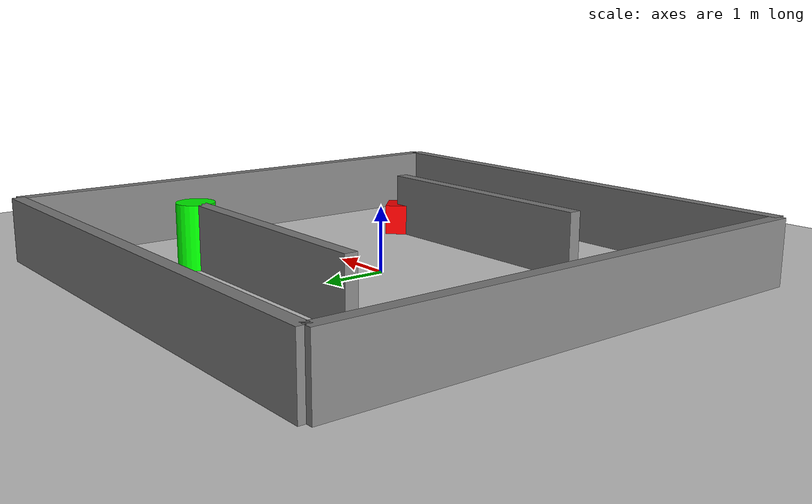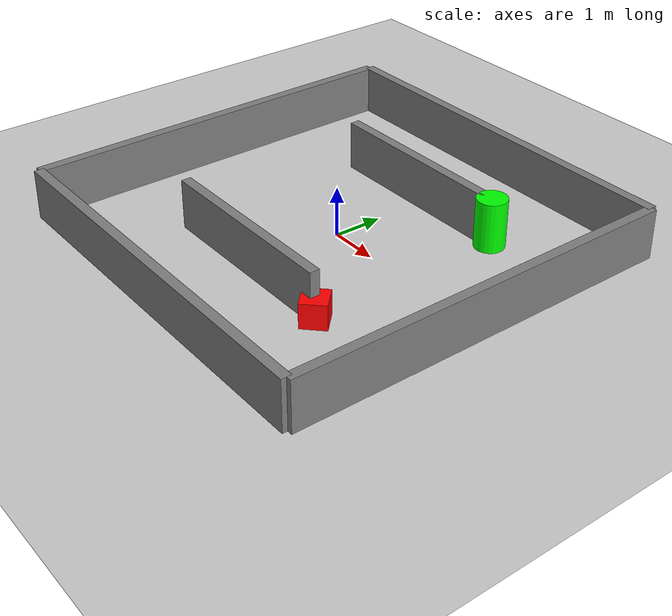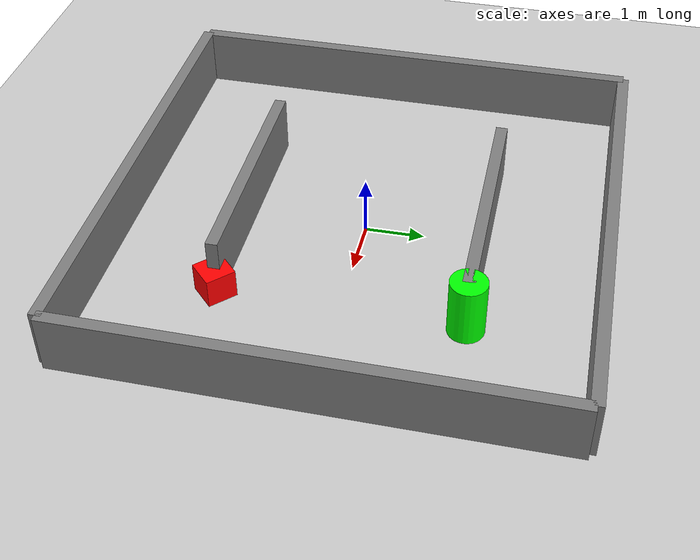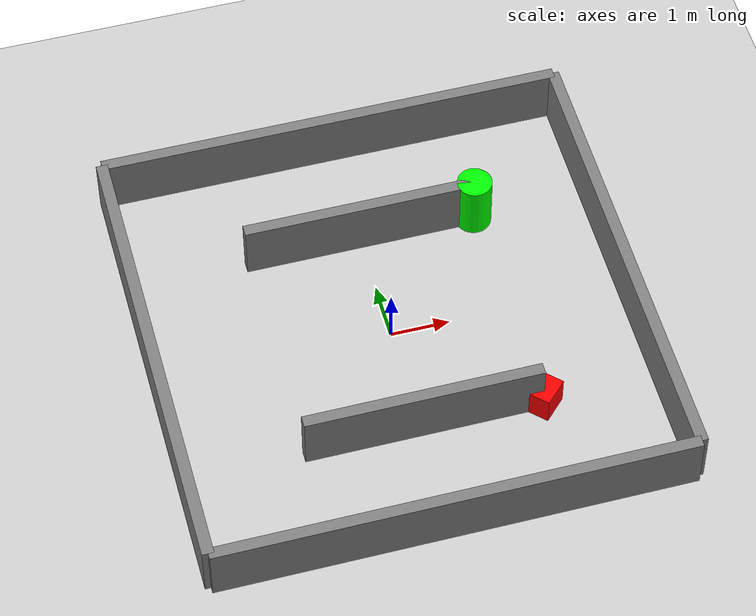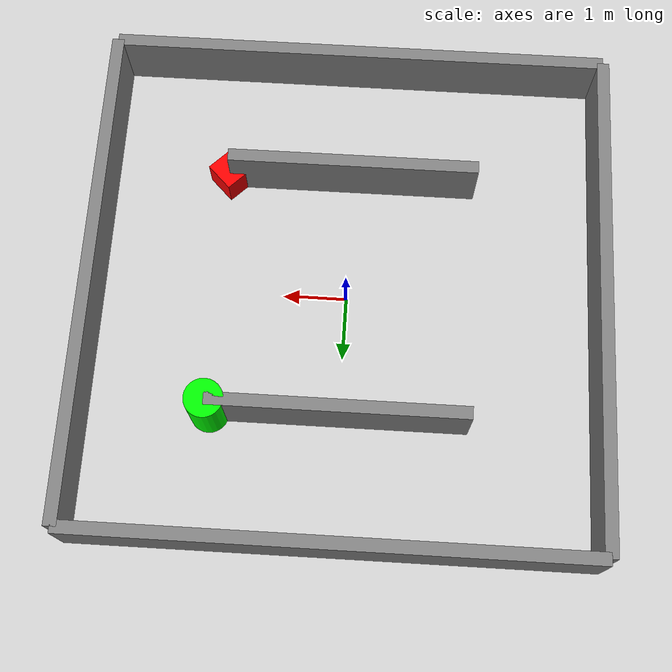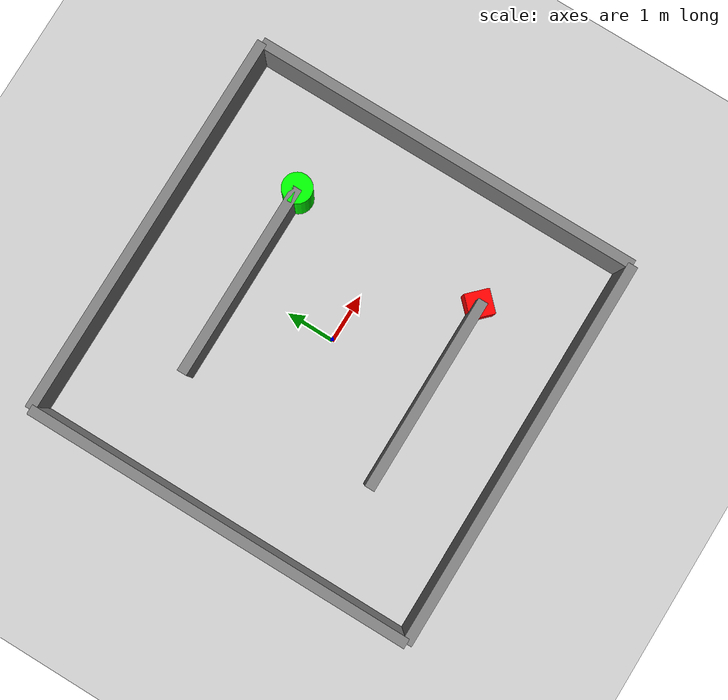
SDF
<sdf version="1.9">
 <world name="obstacle_world">
  <physics name="1ms" type="ignored">
   <max_step_size>0.001</max_step_size>
   <real_time_factor>1.0</real_time_factor>
  </physics>
  <plugin filename="gz-sim-physics-system" name="gz::sim::systems::Physics"/>
  <plugin filename="gz-sim-user-commands-system" name="gz::sim::systems::UserCommands"/>
  <plugin filename="gz-sim-scene-broadcaster-system" name="gz::sim::systems::SceneBroadcaster"/>
  <plugin filename="gz-sim-sensors-system" name="gz::sim::systems::Sensors">
   <render_engine>ogre2</render_engine>
  </plugin>
  <light type="directional" name="sun">
   <pose>0 0 10 0 0 0</pose>
   <diffuse>0.8 0.8 0.8 1</diffuse>
   <specular>0.2 0.2 0.2 1</specular>
   <attenuation>
    <range>1000</range>
    <constant>0.9</constant>
    <linear>0.01</linear>
    <quadratic>0.001</quadratic>
   </attenuation>
   <direction>-0.5 0.1 -0.9</direction>
  </light>
  <model name="ground_plane">
   <static>true</static>
   <link name="link">
    <collision name="collision">
     <geometry><plane><normal>0 0 1</normal><size>100 100</size></plane></geometry>
    </collision>
    <visual name="visual">
     <geometry><plane><normal>0 0 1</normal><size>100 100</size></plane></geometry>
     <material>
      <ambient>0.8 0.8 0.8 1</ambient>
      <diffuse>0.8 0.8 0.8 1</diffuse>
      <specular>0.8 0.8 0.8 1</specular>
     </material>
    </visual>
   </link>
  </model>
  <model name="maze_wall_1">
   <static>true</static>
   <pose>0 4 0.5 0 0 0</pose>
   <link name="link">
    <collision name="collision"><geometry><box><size>8 0.2 1.0</size></box></geometry></collision>
    <visual name="visual">
     <geometry><box><size>8 0.2 1.0</size></box></geometry>
     <material><ambient>0.5 0.5 0.5 1</ambient><diffuse>0.5 0.5 0.5 1</diffuse></material>
    </visual>
   </link>
  </model>
  <model name="maze_wall_2">
   <static>true</static>
   <pose>0 -4 0.5 0 0 0</pose>
   <link name="link">
    <collision name="collision"><geometry><box><size>8 0.2 1.0</size></box></geometry></collision>
    <visual name="visual">
     <geometry><box><size>8 0.2 1.0</size></box></geometry>
     <material><ambient>0.5 0.5 0.5 1</ambient><diffuse>0.5 0.5 0.5 1</diffuse></material>
    </visual>
   </link>
  </model>
  <model name="maze_wall_3">
   <static>true</static>
   <pose>4 0 0.5 0 0 0</pose>
   <link name="link">
    <collision name="collision"><geometry><box><size>0.2 8 1.0</size></box></geometry></collision>
    <visual name="visual">
     <geometry><box><size>0.2 8 1.0</size></box></geometry>
     <material><ambient>0.5 0.5 0.5 1</ambient><diffuse>0.5 0.5 0.5 1</diffuse></material>
    </visual>
   </link>
  </model>
  <model name="maze_wall_4">
   <static>true</static>
   <pose>-4 0 0.5 0 0 0</pose>
   <link name="link">
    <collision name="collision"><geometry><box><size>0.2 8 1.0</size></box></geometry></collision>
    <visual name="visual">
     <geometry><box><size>0.2 8 1.0</size></box></geometry>
     <material><ambient>0.5 0.5 0.5 1</ambient><diffuse>0.5 0.5 0.5 1</diffuse></material>
    </visual>
   </link>
  </model>
  <model name="maze_wall_5">
   <static>true</static>
   <pose>0 2 0.5 0 0 0</pose>
   <link name="link">
    <collision name="collision"><geometry><box><size>4 0.2 1.0</size></box></geometry></collision>
    <visual name="visual">
     <geometry><box><size>4 0.2 1.0</size></box></geometry>
     <material><ambient>0.5 0.5 0.5 1</ambient><diffuse>0.5 0.5 0.5 1</diffuse></material>
    </visual>
   </link>
  </model>
  <model name="maze_wall_6">
   <static>true</static>
   <pose>0 -2 0.5 0 0 0</pose>
   <link name="link">
    <collision name="collision"><geometry><box><size>4 0.2 1.0</size></box></geometry></collision>
    <visual name="visual">
     <geometry><box><size>4 0.2 1.0</size></box></geometry>
     <material><ambient>0.5 0.5 0.5 1</ambient><diffuse>0.5 0.5 0.5 1</diffuse></material>
    </visual>
   </link>
  </model>
  <model name="pillar_1">
   <static>true</static>
   <pose>2 2 0.5 0 0 0</pose>
   <link name="link">
    <collision name="collision">
     <geometry><cylinder><radius>0.3</radius><length>1</length></cylinder></geometry>
    </collision>
    <visual name="visual">
     <geometry><cylinder><radius>0.3</radius><length>1</length></cylinder></geometry>
     <material><ambient>0 1 0 1</ambient><diffuse>0 1 0 1</diffuse></material>
    </visual>
   </link>
  </model>
  <model name="box_obstacle">
   <static>true</static>
   <pose>2 -2 0.25 0 0 0.785</pose>
   <link name="link">
    <collision name="collision"><geometry><box><size>0.5 0.5 0.5</size></box></geometry></collision>
    <visual name="visual">
     <geometry><box><size>0.5 0.5 0.5</size></box></geometry>
     <material><ambient>1 0 0 1</ambient><diffuse>1 0 0 1</diffuse></material>
    </visual>
   </link>
  </model>
 </world>
</sdf>
